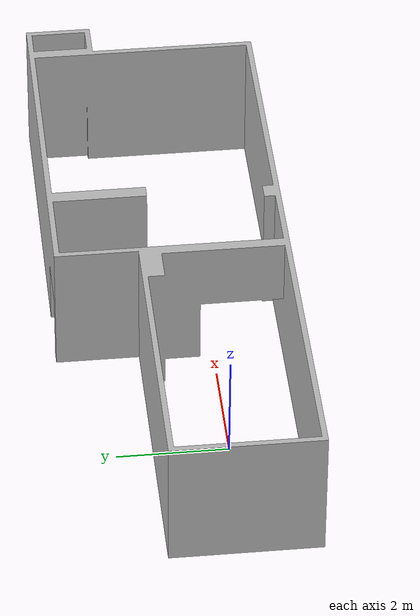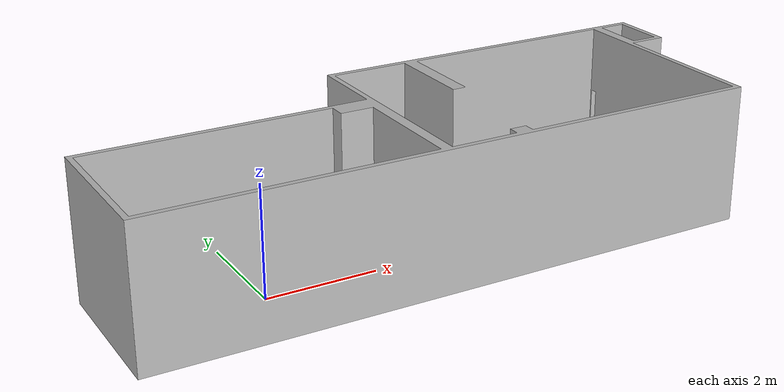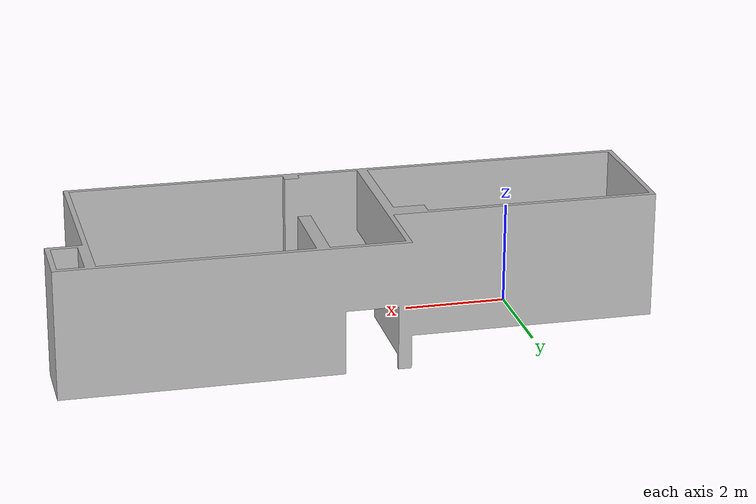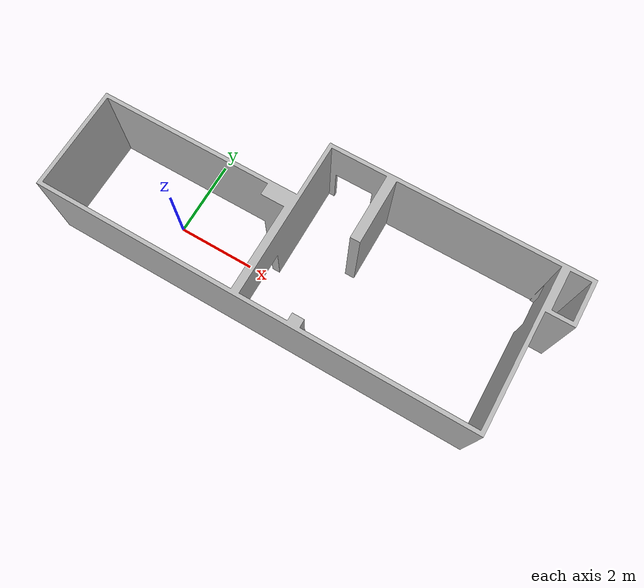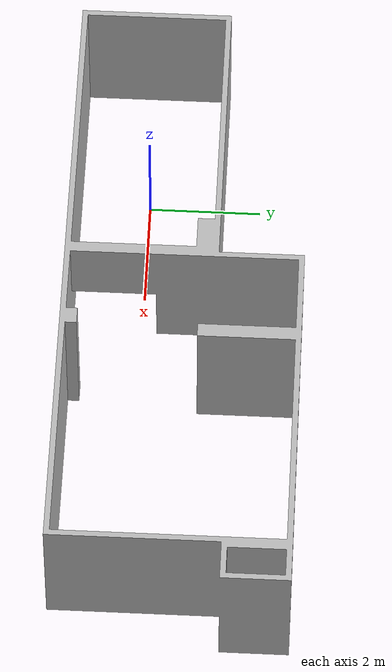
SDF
<?xml version='1.0' encoding='utf-8'?>
<sdf version="1.6">
  <world name="rpwr_team_8">
    <gravity>0 0 -9.8</gravity>

    <physics default="0" name="default_physics" type="ode">
      <max_step_size>0.001</max_step_size>
      <real_time_factor>1</real_time_factor>
      <real_time_update_rate>1000</real_time_update_rate>
    </physics>

    <scene>
      <ambient>0.6 0.6 0.6 1</ambient>
      <background>0.4 0.4 0.4 1</background>
      <shadows>false</shadows>
    </scene>

    <include>
        <uri>
        https://fuel.gazebosim.org/1.0/OpenRobotics/models/Sun
        </uri>
    </include>

    <model name='ground_plane'>
      <static>true</static>
      <link name='link'>
        <collision name='collision'>
          <geometry>
            <plane>
              <normal>0.0 0.0 1</normal>
              <size>1 1</size>
            </plane>
          </geometry>
        </collision>
      </link>
      <pose>0 0 0 0 0 0</pose>
    </model>

    <include>
      <uri>model://rpwr_team_8</uri>
      <static>true</static>
      <pose>-0.0 0.0 0.0 0.0 0.0 0.0</pose>
    </include>

  </world>
</sdf>

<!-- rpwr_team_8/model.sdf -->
<sdf version="1.6">
  <model name="rpwr_team_8">
    <link name="link">
      <visual name="visual">
	    <geometry>
          <mesh>
            <uri>model://3d-mesh/rpwr_team_8.stl</uri>
          </mesh>
        </geometry>
      </visual>
      <collision name="collision">
        <geometry>
          <mesh>
            <uri>model://3d-mesh/rpwr_team_8.stl</uri>
          </mesh>
        </geometry>
      </collision>
    </link>
  <static>1</static>
  </model>
</sdf>
